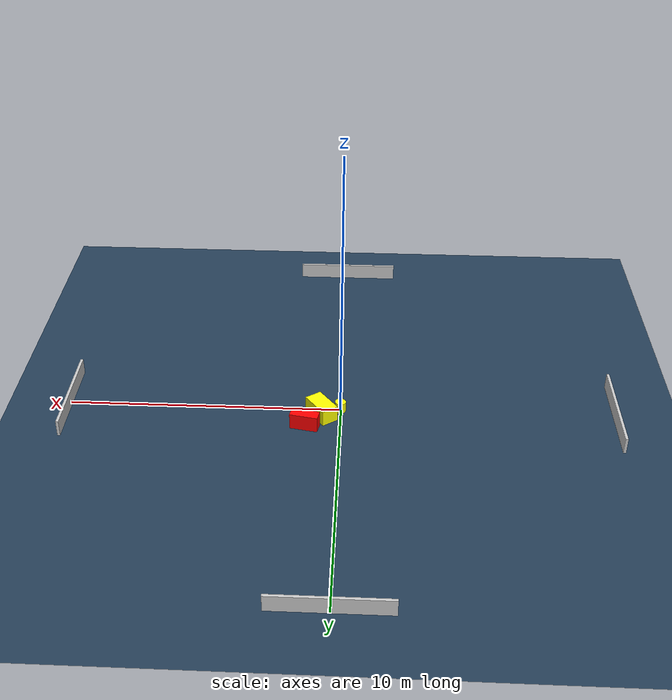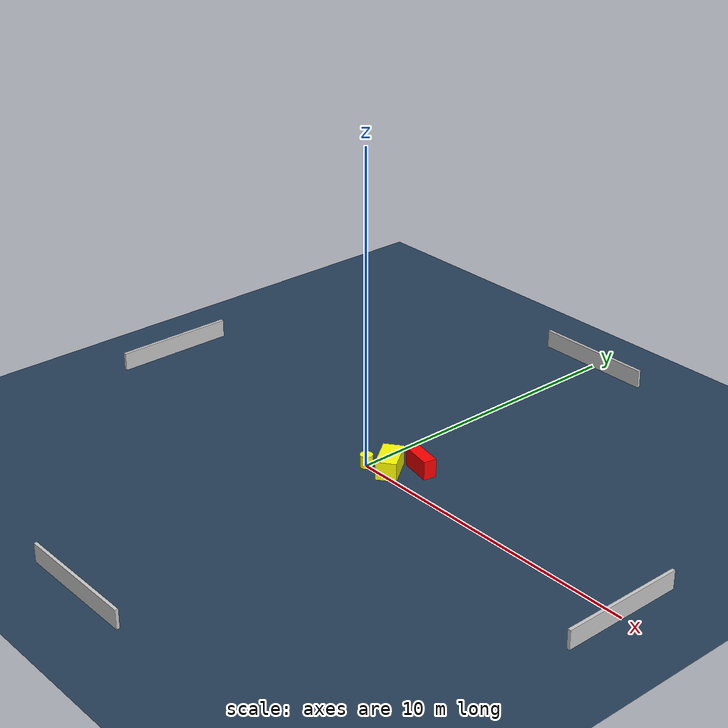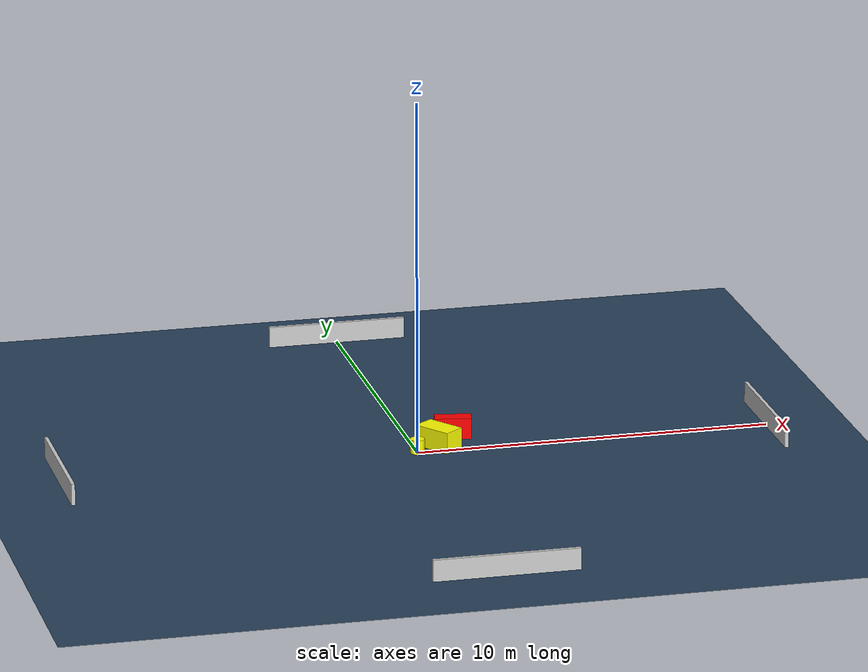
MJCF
<?xml version="1.0" ?>
<mujoco model="generated_environment">
  <option timestep="0.01" integrator="RK4" cone="elliptic"/>
  <default>
    <geom density="1"/>
  </default>
  <asset>
    <texture builtin="gradient" height="3072" name="skybox" rgb1="0.3 0.5 0.7" rgb2="0 0 0" type="skybox" width="512"/>
    <texture builtin="checker" height="300" name="groundplane" rgb1="0.2 0.3 0.4" rgb2="0.1 0.2 0.3" type="2d" width="300"/>
    <material name="groundplane" reflectance="0.2" texrepeat="5 5" texture="groundplane"/>
  </asset>
  <worldbody>
    <light dir="0 0 -1" directional="true" pos="0 0 1.5"/>
    <geom condim="3" friction="0.5 0.005 0.001" material="groundplane" name="floor" pos="0 0 0" size="0 0 0.05" type="plane"/>
    <body name="walls">
      <geom name="wall_1" condim="4" pos="-10.0 0.0 0.3" rgba="0.800000011920929 0.800000011920929 0.800000011920929 1.0" size="0.05 2.0 0.3" type="box"/>
      <geom name="wall_2" condim="4" pos="10.0 0.0 0.3" rgba="0.800000011920929 0.800000011920929 0.800000011920929 1.0" size="0.05 2.0 0.3" type="box"/>
      <geom name="wall_3" condim="4" pos="0.0 -10.0 0.3" rgba="0.800000011920929 0.800000011920929 0.800000011920929 1.0" size="2.0 0.05 0.3" type="box"/>
      <geom name="wall_4" condim="4" pos="0.0 10.0 0.3" rgba="0.800000011920929 0.800000011920929 0.800000011920929 1.0" size="2.0 0.05 0.3" type="box"/>
    </body>
    <body name="robot">
      <joint name="joint_x" type="slide" pos="0 0 0" axis="1 0 0"/>
      <joint name="joint_y" type="slide" pos="0 0 0" axis="0 1 0"/>
      <geom name="robot" type="cylinder" pos="0.0 0.0 0.2" size="0.2 0.2 0.0" mass="5.0" friction="1.0 0.005 0.0001" condim="4" rgba="1.0 1.0 0.0 1.0"/>
    </body>
    <body name="obstacle_1_movable">
      <geom name="obstacle_1_movable" condim="4" pos="0.6861516745695835 0.32304952763332706 0.3" euler="0 0 216.27862883209986" friction="0.0 0.005 0.001" rgba="1.0 1.0 0.0 1.0" size="0.32106529205888734 0.5643682090954875 0.3" type="box" mass="0.1"/>
      <joint type="free"/>
    </body>
    <body name="obstacle_2_static">
      <geom name="obstacle_2_static" condim="4" pos="1.2612314101480715 1.0458777323992117 0.3" euler="0 0 168.86716396573587" friction="0.0 0.005 0.001" rgba="1.0 0.0 0.0 1.0" size="0.5120721507697218 0.2087300052950888 0.3" type="box"/>
    </body>
  </worldbody>
  <actuator>
    <motor name="actuator_x" joint="joint_x" gear="1" ctrlrange="-1 1"/>
    <motor name="actuator_y" joint="joint_y" gear="1" ctrlrange="-1 1"/>
  </actuator>
</mujoco>
